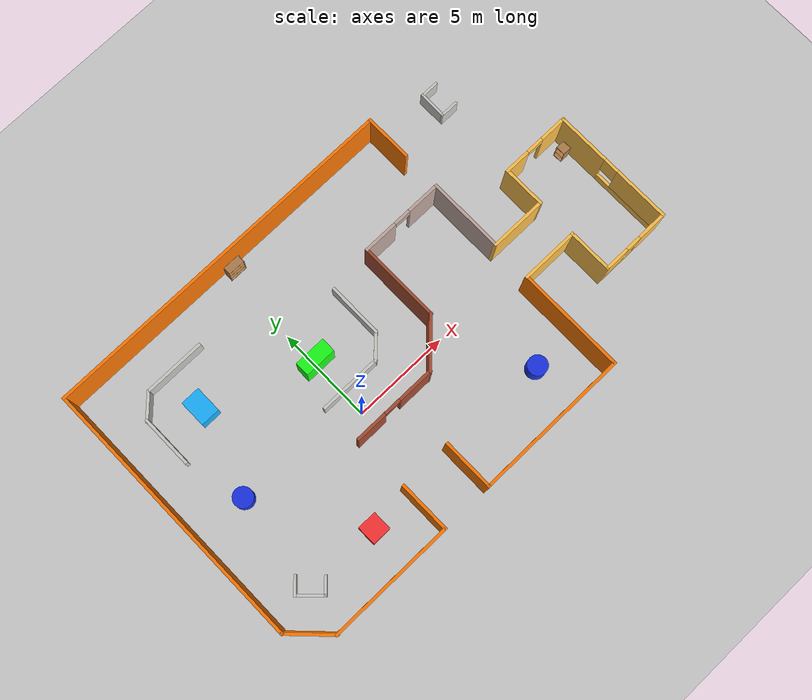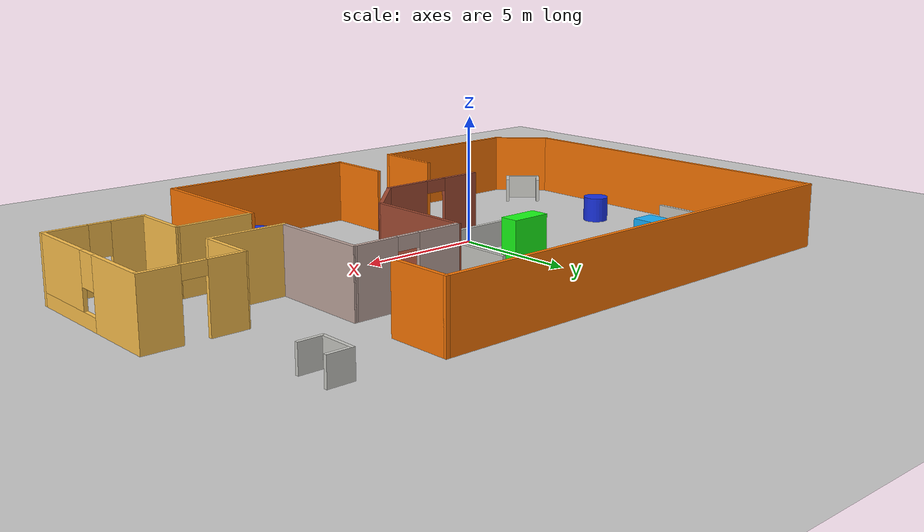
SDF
<sdf version="1.6">
 <world name="default">
  <light name="sun" type="directional">
   <pose>0 0 10 0 -0 0</pose>
   <diffuse>0.8 0.8 0.8 1</diffuse>
   <specular>0.2 0.2 0.2 1</specular>
   <attenuation>
    <range>1000</range>
    <constant>0.9</constant>
    <linear>0.01</linear>
    <quadratic>0.001</quadratic>
   </attenuation>
   <direction>-0.5 0.1 -0.9</direction>
  </light>
  <model name="ground_plane">
   <static>1</static>
   <link name="link">
    <collision name="collision">
     <geometry><plane><normal>0 0 1</normal><size>100 100</size></plane></geometry>
     <surface><friction><ode><mu>100</mu><mu2>50</mu2></ode></friction></surface>
    </collision>
    <visual name="visual">
     <cast_shadows>0</cast_shadows>
     <geometry><plane><normal>0 0 1</normal><size>100 100</size></plane></geometry>
     <material>
      <script><uri>file://media/materials/scripts/gazebo.material</uri><name>Gazebo/Grey</name></script>
     </material>
    </visual>
   </link>
  </model>
  <gravity>0 0 -9.8</gravity>
  <magnetic_field>6e-06 2.3e-05 -4.2e-05</magnetic_field>
  <atmosphere type="adiabatic"/>
  <physics name="default_physics" default="0" type="ode">
   <max_step_size>0.001</max_step_size>
   <real_time_factor>1</real_time_factor>
   <real_time_update_rate>1000</real_time_update_rate>
  </physics>
  <scene><ambient>0.4 0.4 0.4 1</ambient><background>0.7 0.7 0.7 1</background><shadows>1</shadows></scene>
  <spherical_coordinates>
   <surface_model>EARTH_WGS84</surface_model>
   <latitude_deg>0</latitude_deg>
   <longitude_deg>0</longitude_deg>
   <elevation>0</elevation>
   <heading_deg>0</heading_deg>
  </spherical_coordinates>
  <model name="bookshelf">
   <static>1</static>
   <link name="link">
    <inertial><mass>1</mass></inertial>
    <collision name="back">
     <pose>0 0.005 0.6 0 -0 0</pose>
     <geometry><box><size>0.9 0.01 1.2</size></box></geometry>
    </collision>
    <visual name="visual1">
     <pose>0 0.005 0.6 0 -0 0</pose>
     <geometry><box><size>0.9 0.01 1.2</size></box></geometry>
     <material>
      <script><uri>file://media/materials/scripts/gazebo.material</uri><name>Gazebo/Wood</name></script>
     </material>
    </visual>
    <collision name="left_side">
     <pose>0.45 -0.195 0.6 0 -0 0</pose>
     <geometry><box><size>0.02 0.4 1.2</size></box></geometry>
    </collision>
    <visual name="visual2">
     <pose>0.45 -0.195 0.6 0 -0 0</pose>
     <geometry><box><size>0.02 0.4 1.2</size></box></geometry>
     <material>
      <script><uri>file://media/materials/scripts/gazebo.material</uri><name>Gazebo/Wood</name></script>
     </material>
    </visual>
    <collision name="right_side">
     <pose>-0.45 -0.195 0.6 0 -0 0</pose>
     <geometry><box><size>0.02 0.4 1.2</size></box></geometry>
    </collision>
    <visual name="visual3">
     <pose>-0.45 -0.195 0.6 0 -0 0</pose>
     <geometry><box><size>0.02 0.4 1.2</size></box></geometry>
     <material>
      <script><uri>file://media/materials/scripts/gazebo.material</uri><name>Gazebo/Wood</name></script>
     </material>
    </visual>
    <collision name="bottom">
     <pose>0 -0.195 0.03 0 -0 0</pose>
     <geometry><box><size>0.88 0.4 0.06</size></box></geometry>
    </collision>
    <visual name="visual4">
     <pose>0 -0.195 0.03 0 -0 0</pose>
     <geometry><box><size>0.88 0.4 0.06</size></box></geometry>
     <material>
      <script><uri>file://media/materials/scripts/gazebo.material</uri><name>Gazebo/Wood</name></script>
     </material>
    </visual>
    <collision name="top">
     <pose>0 -0.195 1.19 0 -0 0</pose>
     <geometry><box><size>0.88 0.4 0.02</size></box></geometry>
    </collision>
    <visual name="visual5">
     <pose>0 -0.195 1.19 0 -0 0</pose>
     <geometry><box><size>0.88 0.4 0.02</size></box></geometry>
     <material>
      <script><uri>file://media/materials/scripts/gazebo.material</uri><name>Gazebo/Wood</name></script>
     </material>
    </visual>
    <collision name="low_shelf">
     <pose>0 -0.195 0.43 0 -0 0</pose>
     <geometry><box><size>0.88 0.4 0.02</size></box></geometry>
    </collision>
    <visual name="visual6">
     <pose>0 -0.195 0.43 0 -0 0</pose>
     <geometry><box><size>0.88 0.4 0.02</size></box></geometry>
     <material>
      <script><uri>file://media/materials/scripts/gazebo.material</uri><name>Gazebo/Wood</name></script>
     </material>
    </visual>
    <collision name="high_shelf">
     <pose>0 -0.195 0.8 0 -0 0</pose>
     <geometry><box><size>0.88 0.4 0.02</size></box></geometry>
    </collision>
    <visual name="visual7">
     <pose>0 -0.195 0.8 0 -0 0</pose>
     <geometry><box><size>0.88 0.4 0.02</size></box></geometry>
     <material>
      <script><uri>file://media/materials/scripts/gazebo.material</uri><name>Gazebo/Wood</name></script>
     </material>
    </visual>
   </link>
   <pose>0.41505 9.14949 0 0 -0 0</pose>
  </model>
  <model name="nav-test-3">
   <pose>3.31151 1.4539 0 0 -0 0</pose>
   <link name="Wall_0">
    <pose>-2.24521 -2.42459 0 0 -0 0</pose>
    <visual name="Wall_0_Visual_0">
     <pose>-1.41633 0 1.25 0 -0 0</pose>
     <geometry><box><size>1.68733 0.15 2.5</size></box></geometry>
     <material>
      <script><uri>file://media/materials/scripts/gazebo.material</uri><name>Gazebo/Bricks</name></script>
      <ambient>0.760784 0.662745 0.627451 1</ambient>
     </material>
     <meta><layer>0</layer></meta>
    </visual>
    <collision name="Wall_0_Collision_0">
     <geometry><box><size>1.68733 0.15 2.5</size></box></geometry>
     <pose>-1.41633 0 1.25 0 -0 0</pose>
    </collision>
    <visual name="Wall_0_Visual_1">
     <pose>1.29367 0 1.25 0 -0 0</pose>
     <geometry><box><size>1.93267 0.15 2.5</size></box></geometry>
     <material>
      <script><uri>file://media/materials/scripts/gazebo.material</uri><name>Gazebo/Bricks</name></script>
      <ambient>0.760784 0.662745 0.627451 1</ambient>
     </material>
     <meta><layer>0</layer></meta>
    </visual>
    <collision name="Wall_0_Collision_1">
     <geometry><box><size>1.93267 0.15 2.5</size></box></geometry>
     <pose>1.29367 0 1.25 0 -0 0</pose>
    </collision>
    <visual name="Wall_0_Visual_2">
     <pose>-0.122667 0 2.25 0 -0 0</pose>
     <geometry><box><size>0.9 0.15 0.5</size></box></geometry>
     <material>
      <script><uri>file://media/materials/scripts/gazebo.material</uri><name>Gazebo/Bricks</name></script>
      <ambient>0.760784 0.662745 0.627451 1</ambient>
     </material>
     <meta><layer>0</layer></meta>
    </visual>
    <collision name="Wall_0_Collision_2">
     <geometry><box><size>0.9 0.15 0.5</size></box></geometry>
     <pose>-0.122667 0 2.25 0 -0 0</pose>
    </collision>
   </link>
   <link name="Wall_1">
    <collision name="Wall_1_Collision">
     <geometry><box><size>2.75 0.15 2.5</size></box></geometry>
     <pose>0 0 1.25 0 -0 0</pose>
    </collision>
    <visual name="Wall_1_Visual">
     <pose>0 0 1.25 0 -0 0</pose>
     <geometry><box><size>2.75 0.15 2.5</size></box></geometry>
     <material>
      <script><uri>file://media/materials/scripts/gazebo.material</uri><name>Gazebo/Bricks</name></script>
      <ambient>0.760784 0.662745 0.627451 1</ambient>
     </material>
     <meta><layer>0</layer></meta>
    </visual>
    <pose>0.858791 -1.50559 0 0 -0 0.785398</pose>
   </link>
   <link name="Wall_10">
    <collision name="Wall_10_Collision">
     <geometry><box><size>2.715 0.15 2.5</size></box></geometry>
     <pose>0 0 1.25 0 -0 0</pose>
    </collision>
    <visual name="Wall_10_Visual">
     <pose>0 0 1.25 0 -0 0</pose>
     <geometry><box><size>2.715 0.15 2.5</size></box></geometry>
     <material>
      <script><uri>file://media/materials/scripts/gazebo.material</uri><name>Gazebo/Grey</name></script>
      <ambient>0.996078 0.47451 0.0196078 1</ambient>
     </material>
     <meta><layer>0</layer></meta>
    </visual>
    <pose>-4.43021 -6.54909 0 0 0 -1.5708</pose>
   </link>
   <link name="Wall_11">
    <collision name="Wall_11_Collision">
     <geometry><box><size>6.60515 0.15 2.5</size></box></geometry>
     <pose>0 0 1.25 0 -0 0</pose>
    </collision>
    <visual name="Wall_11_Visual">
     <pose>0 0 1.25 0 -0 0</pose>
     <geometry><box><size>6.60515 0.15 2.5</size></box></geometry>
     <material>
      <script><uri>file://media/materials/scripts/gazebo.material</uri><name>Gazebo/Grey</name></script>
      <ambient>0.996078 0.47451 0.0196078 1</ambient>
     </material>
     <meta><layer>0</layer></meta>
    </visual>
    <pose>-7.65771 -7.83159 0 0 -0 3.14159</pose>
   </link>
   <link name="Wall_12">
    <collision name="Wall_12_Collision">
     <geometry><box><size>2.50042 0.15 2.5</size></box></geometry>
     <pose>0 0 1.25 0 -0 0</pose>
    </collision>
    <visual name="Wall_12_Visual">
     <pose>0 0 1.25 0 -0 0</pose>
     <geometry><box><size>2.50042 0.15 2.5</size></box></geometry>
     <material>
      <script><uri>file://media/materials/scripts/gazebo.material</uri><name>Gazebo/Grey</name></script>
      <ambient>0.996078 0.47451 0.0196078 1</ambient>
     </material>
     <meta><layer>0</layer></meta>
    </visual>
    <pose>-11.7162 -7.00059 0 0 -0 2.35619</pose>
   </link>
   <link name="Wall_13">
    <collision name="Wall_13_Collision">
     <geometry><box><size>14.182 0.15 2.5</size></box></geometry>
     <pose>0 0 1.25 0 -0 0</pose>
    </collision>
    <visual name="Wall_13_Visual">
     <pose>0 0 1.25 0 -0 0</pose>
     <geometry><box><size>14.182 0.15 2.5</size></box></geometry>
     <material>
      <script><uri>file://media/materials/scripts/gazebo.material</uri><name>Gazebo/Grey</name></script>
      <ambient>0.996078 0.47451 0.0196078 1</ambient>
     </material>
     <meta><layer>0</layer></meta>
    </visual>
    <pose>-12.5472 0.846409 0 0 -0 1.5708</pose>
   </link>
   <link name="Wall_15">
    <collision name="Wall_15_Collision">
     <geometry><box><size>2.715 0.15 2.5</size></box></geometry>
     <pose>0 0 1.25 0 -0 0</pose>
    </collision>
    <visual name="Wall_15_Visual">
     <pose>0 0 1.25 0 -0 0</pose>
     <geometry><box><size>2.715 0.15 2.5</size></box></geometry>
     <material>
      <script><uri>file://media/materials/scripts/gazebo.material</uri><name>Gazebo/Grey</name></script>
      <ambient>0.996078 0.47451 0.0196078 1</ambient>
     </material>
     <meta><layer>0</layer></meta>
    </visual>
    <pose>-1.77221 -6.54909 0 0 0 -1.5708</pose>
   </link>
   <link name="Wall_16">
    <collision name="Wall_16_Collision">
     <geometry><box><size>8 0.15 2.5</size></box></geometry>
     <pose>0 0 1.25 0 -0 0</pose>
    </collision>
    <visual name="Wall_16_Visual">
     <pose>0 0 1.25 0 -0 0</pose>
     <geometry><box><size>8 0.15 2.5</size></box></geometry>
     <material>
      <script><uri>file://media/materials/scripts/gazebo.material</uri><name>Gazebo/Grey</name></script>
      <ambient>0.996078 0.47451 0.0196078 1</ambient>
     </material>
     <meta><layer>0</layer></meta>
    </visual>
    <pose>2.15279 -7.83159 0 0 -0 0</pose>
   </link>
   <link name="Wall_17">
    <collision name="Wall_17_Collision">
     <geometry><box><size>5.60694 0.15 2.5</size></box></geometry>
     <pose>0 0 1.25 0 -0 0</pose>
    </collision>
    <visual name="Wall_17_Visual">
     <pose>0 0 1.25 0 -0 0</pose>
     <geometry><box><size>5.60694 0.15 2.5</size></box></geometry>
     <material>
      <script><uri>file://media/materials/scripts/gazebo.material</uri><name>Gazebo/Grey</name></script>
      <ambient>0.996078 0.47451 0.0196078 1</ambient>
     </material>
     <meta><layer>0</layer></meta>
    </visual>
    <pose>6.07782 -5.10312 0 0 -0 1.57079</pose>
   </link>
   <link name="Wall_18">
    <collision name="Wall_18_Collision">
     <geometry><box><size>3.04994 0.15 2.5</size></box></geometry>
     <pose>0 0 1.25 0 -0 0</pose>
    </collision>
    <visual name="Wall_18_Visual">
     <pose>0 0 1.25 0 -0 0</pose>
     <geometry><box><size>3.04994 0.15 2.5</size></box></geometry>
     <material>
      <script><uri>file://media/materials/scripts/gazebo.material</uri><name>Gazebo/Grey</name></script>
      <ambient>1 0.764706 0.305882 1</ambient>
     </material>
     <meta><layer>0</layer></meta>
    </visual>
    <pose>7.52782 -2.37462 0 0 -0 2.1e-05</pose>
   </link>
   <link name="Wall_2">
    <collision name="Wall_2_Collision">
     <geometry><box><size>4.25 0.15 2.5</size></box></geometry>
     <pose>0 0 1.25 0 -0 0</pose>
    </collision>
    <visual name="Wall_2_Visual">
     <pose>0 0 1.25 0 -0 0</pose>
     <geometry><box><size>4.25 0.15 2.5</size></box></geometry>
     <material>
      <script><uri>file://media/materials/scripts/gazebo.material</uri><name>Gazebo/Bricks</name></script>
      <ambient>0.760784 0.662745 0.627451 1</ambient>
     </material>
     <meta><layer>0</layer></meta>
    </visual>
    <pose>1.77779 1.46341 0 0 -0 1.5708</pose>
   </link>
   <link name="Wall_20">
    <collision name="Wall_20_Collision">
     <geometry><box><size>3 0.15 2.5</size></box></geometry>
     <pose>0 0 1.25 0 -0 0</pose>
    </collision>
    <visual name="Wall_20_Visual">
     <pose>0 0 1.25 0 -0 0</pose>
     <geometry><box><size>3 0.15 2.5</size></box></geometry>
     <material>
      <script><uri>file://media/materials/scripts/gazebo.material</uri><name>Gazebo/Grey</name></script>
      <ambient>1 0.764706 0.305882 1</ambient>
     </material>
     <meta><layer>0</layer></meta>
    </visual>
    <pose>7.55303 -0.336352 0 0 0 -0.000168</pose>
   </link>
   <link name="Wall_22">
    <collision name="Wall_22_Collision">
     <geometry><box><size>2.25 0.15 2.5</size></box></geometry>
     <pose>0 0 1.25 0 -0 0</pose>
    </collision>
    <visual name="Wall_22_Visual">
     <pose>0 0 1.25 0 -0 0</pose>
     <geometry><box><size>2.25 0.15 2.5</size></box></geometry>
     <material>
      <script><uri>file://media/materials/scripts/gazebo.material</uri><name>Gazebo/Grey</name></script>
      <ambient>1 0.764706 0.305882 1</ambient>
     </material>
     <meta><layer>0</layer></meta>
    </visual>
    <pose>8.97779 0.713409 0 0 -0 1.5708</pose>
   </link>
   <link name="Wall_23">
    <pose>10.778 1.76365 0 0 -0 0.000133</pose>
    <visual name="Wall_23_Visual_0">
     <pose>-1.18007 0 1.25 0 -0 0</pose>
     <geometry><box><size>1.38986 0.15 2.5</size></box></geometry>
     <material>
      <script><uri>file://media/materials/scripts/gazebo.material</uri><name>Gazebo/Grey</name></script>
      <ambient>1 0.764706 0.305882 1</ambient>
     </material>
     <meta><layer>0</layer></meta>
    </visual>
    <collision name="Wall_23_Collision_0">
     <geometry><box><size>1.38986 0.15 2.5</size></box></geometry>
     <pose>-1.18007 0 1.25 0 -0 0</pose>
    </collision>
    <visual name="Wall_23_Visual_1">
     <pose>1.14493 0 1.25 0 -0 0</pose>
     <geometry><box><size>1.46014 0.15 2.5</size></box></geometry>
     <material>
      <script><uri>file://media/materials/scripts/gazebo.material</uri><name>Gazebo/Grey</name></script>
      <ambient>1 0.764706 0.305882 1</ambient>
     </material>
     <meta><layer>0</layer></meta>
    </visual>
    <collision name="Wall_23_Collision_1">
     <geometry><box><size>1.46014 0.15 2.5</size></box></geometry>
     <pose>1.14493 0 1.25 0 -0 0</pose>
    </collision>
    <visual name="Wall_23_Visual_2">
     <pose>-0.035141 0 2.25 0 -0 0</pose>
     <geometry><box><size>0.9 0.15 0.5</size></box></geometry>
     <material>
      <script><uri>file://media/materials/scripts/gazebo.material</uri><name>Gazebo/Grey</name></script>
      <ambient>1 0.764706 0.305882 1</ambient>
     </material>
     <meta><layer>0</layer></meta>
    </visual>
    <collision name="Wall_23_Collision_2">
     <geometry><box><size>0.9 0.15 0.5</size></box></geometry>
     <pose>-0.035141 0 2.25 0 -0 0</pose>
    </collision>
   </link>
   <link name="Wall_24">
    <pose>12.578 -1.41135 0 0 0 -1.57087</pose>
    <visual name="Wall_24_Visual_0">
     <pose>-1.86182 0 1.25 0 -0 0</pose>
     <geometry><box><size>2.77637 0.15 2.5</size></box></geometry>
     <material>
      <script><uri>file://media/materials/scripts/gazebo.material</uri><name>Gazebo/Grey</name></script>
      <ambient>1 0.764706 0.305882 1</ambient>
     </material>
     <meta><layer>0</layer></meta>
    </visual>
    <collision name="Wall_24_Collision_0">
     <geometry><box><size>2.77637 0.15 2.5</size></box></geometry>
     <pose>-1.86182 0 1.25 0 -0 0</pose>
    </collision>
    <visual name="Wall_24_Visual_1">
     <pose>1.38818 0 0.25 0 -0 0</pose>
     <geometry><box><size>3.72363 0.15 0.5</size></box></geometry>
     <material>
      <script><uri>file://media/materials/scripts/gazebo.material</uri><name>Gazebo/Grey</name></script>
      <ambient>1 0.764706 0.305882 1</ambient>
     </material>
     <meta><layer>0</layer></meta>
    </visual>
    <collision name="Wall_24_Collision_1">
     <geometry><box><size>3.72363 0.15 0.5</size></box></geometry>
     <pose>1.38818 0 0.25 0 -0 0</pose>
    </collision>
    <visual name="Wall_24_Visual_2">
     <pose>1.78818 0 1.5 0 -0 0</pose>
     <geometry><box><size>2.92363 0.15 2</size></box></geometry>
     <material>
      <script><uri>file://media/materials/scripts/gazebo.material</uri><name>Gazebo/Grey</name></script>
      <ambient>1 0.764706 0.305882 1</ambient>
     </material>
     <meta><layer>0</layer></meta>
    </visual>
    <collision name="Wall_24_Collision_2">
     <geometry><box><size>2.92363 0.15 2</size></box></geometry>
     <pose>1.78818 0 1.5 0 -0 0</pose>
    </collision>
    <visual name="Wall_24_Visual_3">
     <pose>-0.073632 0 1.9 0 -0 0</pose>
     <geometry><box><size>0.8 0.15 1.2</size></box></geometry>
     <material>
      <script><uri>file://media/materials/scripts/gazebo.material</uri><name>Gazebo/Grey</name></script>
      <ambient>1 0.764706 0.305882 1</ambient>
     </material>
     <meta><layer>0</layer></meta>
    </visual>
    <collision name="Wall_24_Collision_3">
     <geometry><box><size>0.8 0.15 1.2</size></box></geometry>
     <pose>-0.073632 0 1.9 0 -0 0</pose>
    </collision>
   </link>
   <link name="Wall_25">
    <pose>10.7778 -4.58659 0 0 -0 3.14159</pose>
    <visual name="Wall_25_Visual_0">
     <pose>-1.06993 0 1.25 0 -0 0</pose>
     <geometry><box><size>1.61014 0.15 2.5</size></box></geometry>
     <material>
      <script><uri>file://media/materials/scripts/gazebo.material</uri><name>Gazebo/Grey</name></script>
      <ambient>1 0.764706 0.305882 1</ambient>
     </material>
     <meta><layer>0</layer></meta>
    </visual>
    <collision name="Wall_25_Collision_0">
     <geometry><box><size>1.61014 0.15 2.5</size></box></geometry>
     <pose>-1.06993 0 1.25 0 -0 0</pose>
    </collision>
    <visual name="Wall_25_Visual_1">
     <pose>0.805069 0 0.25 0 -0 0</pose>
     <geometry><box><size>2.13986 0.15 0.5</size></box></geometry>
     <material>
      <script><uri>file://media/materials/scripts/gazebo.material</uri><name>Gazebo/Grey</name></script>
      <ambient>1 0.764706 0.305882 1</ambient>
     </material>
     <meta><layer>0</layer></meta>
    </visual>
    <collision name="Wall_25_Collision_1">
     <geometry><box><size>2.13986 0.15 0.5</size></box></geometry>
     <pose>0.805069 0 0.25 0 -0 0</pose>
    </collision>
    <visual name="Wall_25_Visual_2">
     <pose>1.20507 0 1.5 0 -0 0</pose>
     <geometry><box><size>1.33986 0.15 2</size></box></geometry>
     <material>
      <script><uri>file://media/materials/scripts/gazebo.material</uri><name>Gazebo/Grey</name></script>
      <ambient>1 0.764706 0.305882 1</ambient>
     </material>
     <meta><layer>0</layer></meta>
    </visual>
    <collision name="Wall_25_Collision_2">
     <geometry><box><size>1.33986 0.15 2</size></box></geometry>
     <pose>1.20507 0 1.5 0 -0 0</pose>
    </collision>
    <visual name="Wall_25_Visual_3">
     <pose>0.135138 0 1.9 0 -0 0</pose>
     <geometry><box><size>0.8 0.15 1.2</size></box></geometry>
     <material>
      <script><uri>file://media/materials/scripts/gazebo.material</uri><name>Gazebo/Grey</name></script>
      <ambient>1 0.764706 0.305882 1</ambient>
     </material>
     <meta><layer>0</layer></meta>
    </visual>
    <collision name="Wall_25_Collision_3">
     <geometry><box><size>0.8 0.15 1.2</size></box></geometry>
     <pose>0.135138 0 1.9 0 -0 0</pose>
    </collision>
   </link>
   <link name="Wall_27">
    <collision name="Wall_27_Collision">
     <geometry><box><size>2.362 0.15 2.5</size></box></geometry>
     <pose>0 0 1.25 0 -0 0</pose>
    </collision>
    <visual name="Wall_27_Visual">
     <pose>0 0 1.25 0 -0 0</pose>
     <geometry><box><size>2.362 0.15 2.5</size></box></geometry>
     <material>
      <script><uri>file://media/materials/scripts/gazebo.material</uri><name>Gazebo/Grey</name></script>
      <ambient>1 0.764706 0.305882 1</ambient>
     </material>
     <meta><layer>0</layer></meta>
    </visual>
    <pose>8.97779 -3.48059 0 0 0 -1.5708</pose>
   </link>
   <link name="Wall_29">
    <collision name="Wall_29_Collision">
     <geometry><box><size>2.5 0.15 2.5</size></box></geometry>
     <pose>0 0 1.25 0 -0 0</pose>
    </collision>
    <visual name="Wall_29_Visual">
     <pose>0 0 1.25 0 -0 0</pose>
     <geometry><box><size>2.5 0.15 2.5</size></box></geometry>
     <material>
      <script><uri>file://media/materials/scripts/gazebo.material</uri><name>Gazebo/Grey</name></script>
      <ambient>0.996078 0.47451 0.0196078 1</ambient>
     </material>
     <meta><layer>0</layer></meta>
    </visual>
    <pose>6.14893 6.68765 0 0 -0 1.57092</pose>
   </link>
   <link name="Wall_3">
    <pose>3.95303 3.51365 0 0 -0 0.00011</pose>
    <visual name="Wall_3_Visual_0">
     <pose>-1.34498 0 1.25 0 -0 0</pose>
     <geometry><box><size>1.81003 0.15 2.5</size></box></geometry>
     <material>
      <script><uri>file://media/materials/scripts/gazebo.material</uri><name>Gazebo/Grey</name></script>
      <ambient>0.760784 0.662745 0.627451 1</ambient>
     </material>
     <meta><layer>0</layer></meta>
    </visual>
    <collision name="Wall_3_Collision_0">
     <geometry><box><size>1.81003 0.15 2.5</size></box></geometry>
     <pose>-1.34498 0 1.25 0 -0 0</pose>
    </collision>
    <visual name="Wall_3_Visual_1">
     <pose>1.35502 0 1.25 0 -0 0</pose>
     <geometry><box><size>1.78997 0.15 2.5</size></box></geometry>
     <material>
      <script><uri>file://media/materials/scripts/gazebo.material</uri><name>Gazebo/Grey</name></script>
      <ambient>0.760784 0.662745 0.627451 1</ambient>
     </material>
     <meta><layer>0</layer></meta>
    </visual>
    <collision name="Wall_3_Collision_1">
     <geometry><box><size>1.78997 0.15 2.5</size></box></geometry>
     <pose>1.35502 0 1.25 0 -0 0</pose>
    </collision>
    <visual name="Wall_3_Visual_2">
     <pose>0.010032 0 2.25 0 -0 0</pose>
     <geometry><box><size>0.9 0.15 0.5</size></box></geometry>
     <material>
      <script><uri>file://media/materials/scripts/gazebo.material</uri><name>Gazebo/Grey</name></script>
      <ambient>0.760784 0.662745 0.627451 1</ambient>
     </material>
     <meta><layer>0</layer></meta>
    </visual>
    <collision name="Wall_3_Collision_2">
     <geometry><box><size>0.9 0.15 0.5</size></box></geometry>
     <pose>0.010032 0 2.25 0 -0 0</pose>
    </collision>
   </link>
   <link name="Wall_30">
    <collision name="Wall_30_Collision">
     <geometry><box><size>18.846 0.15 2.5</size></box></geometry>
     <pose>0 0 1.25 0 -0 0</pose>
    </collision>
    <visual name="Wall_30_Visual">
     <pose>0 0 1.25 0 -0 0</pose>
     <geometry><box><size>18.846 0.15 2.5</size></box></geometry>
     <material>
      <script><uri>file://media/materials/scripts/gazebo.material</uri><name>Gazebo/Grey</name></script>
      <ambient>0.996078 0.47451 0.0196078 1</ambient>
     </material>
     <meta><layer>0</layer></meta>
    </visual>
    <pose>-3.19921 7.86241 0 0 -0 3.14159</pose>
   </link>
   <link name="Wall_32">
    <collision name="Wall_32_Collision">
     <geometry><box><size>3.25 0.15 1</size></box></geometry>
     <pose>0 0 0.5 0 -0 0</pose>
    </collision>
    <visual name="Wall_32_Visual">
     <pose>0 0 0.5 0 -0 0</pose>
     <geometry><box><size>3.25 0.15 1</size></box></geometry>
     <material>
      <script><uri>file://media/materials/scripts/gazebo.material</uri><name>Gazebo/CeilingTiled</name></script>
      <ambient>0.435294 0.796078 0.67451 1</ambient>
     </material>
     <meta><layer>0</layer></meta>
    </visual>
    <pose>-8.11721 5.88541 0 0 -0 3.14159</pose>
   </link>
   <link name="Wall_36">
    <collision name="Wall_36_Collision">
     <geometry><box><size>1.5 0.15 1</size></box></geometry>
     <pose>0 0 0.5 0 -0 0</pose>
    </collision>
    <visual name="Wall_36_Visual">
     <pose>0 0 0.5 0 -0 0</pose>
     <geometry><box><size>1.5 0.15 1</size></box></geometry>
     <material>
      <script><uri>file://media/materials/scripts/gazebo.material</uri><name>Gazebo/CeilingTiled</name></script>
      <ambient>0.435294 0.796078 0.67451 1</ambient>
     </material>
     <meta><layer>0</layer></meta>
    </visual>
    <pose>-10.1447 5.40791 0 0 0 -2.35619</pose>
   </link>
   <link name="Wall_37">
    <collision name="Wall_37_Collision">
     <geometry><box><size>2.75 0.15 1</size></box></geometry>
     <pose>0 0 0.5 0 -0 0</pose>
    </collision>
    <visual name="Wall_37_Visual">
     <pose>0 0 0.5 0 -0 0</pose>
     <geometry><box><size>2.75 0.15 1</size></box></geometry>
     <material>
      <script><uri>file://media/materials/scripts/gazebo.material</uri><name>Gazebo/CeilingTiled</name></script>
      <ambient>0.435294 0.796078 0.67451 1</ambient>
     </material>
     <meta><layer>0</layer></meta>
    </visual>
    <pose>-10.6222 3.63041 0 0 0 -1.5708</pose>
   </link>
   <link name="Wall_4">
    <collision name="Wall_4_Collision">
     <geometry><box><size>4 0.15 2.5</size></box></geometry>
     <pose>0 0 1.25 0 -0 0</pose>
    </collision>
    <visual name="Wall_4_Visual">
     <pose>0 0 1.25 0 -0 0</pose>
     <geometry><box><size>4 0.15 2.5</size></box></geometry>
     <material>
      <script><uri>file://media/materials/scripts/gazebo.material</uri><name>Gazebo/Grey</name></script>
      <ambient>0.760784 0.662745 0.627451 1</ambient>
     </material>
     <meta><layer>0</layer></meta>
    </visual>
    <pose>6.12827 1.58889 0 0 0 -1.5708</pose>
   </link>
   <link name="Wall_6">
    <collision name="Wall_6_Collision">
     <geometry><box><size>2.909 0.15 1</size></box></geometry>
     <pose>0 0 0.5 0 -0 0</pose>
    </collision>
    <visual name="Wall_6_Visual">
     <pose>0 0 0.5 0 -0 0</pose>
     <geometry><box><size>2.909 0.15 1</size></box></geometry>
     <material>
      <script><uri>file://media/materials/scripts/gazebo.material</uri><name>Gazebo/CeilingTiled</name></script>
      <ambient>0.435294 0.796078 0.67451 1</ambient>
     </material>
     <meta><layer>0</layer></meta>
    </visual>
    <pose>-0.322209 2.13391 0 0 0 -1.5708</pose>
   </link>
   <link name="Wall_7">
    <collision name="Wall_7_Collision">
     <geometry><box><size>1.5 0.15 1</size></box></geometry>
     <pose>0 0 0.5 0 -0 0</pose>
    </collision>
    <visual name="Wall_7_Visual">
     <pose>0 0 0.5 0 -0 0</pose>
     <geometry><box><size>1.5 0.15 1</size></box></geometry>
     <material>
      <script><uri>file://media/materials/scripts/gazebo.material</uri><name>Gazebo/CeilingTiled</name></script>
      <ambient>0.435294 0.796078 0.67451 1</ambient>
     </material>
     <meta><layer>0</layer></meta>
    </visual>
    <pose>-0.799209 0.276909 0 0 0 -2.35567</pose>
   </link>
   <link name="Wall_8">
    <collision name="Wall_8_Collision">
     <geometry><box><size>3.304 0.15 1</size></box></geometry>
     <pose>0 0 0.5 0 -0 0</pose>
    </collision>
    <visual name="Wall_8_Visual">
     <pose>0 0 0.5 0 -0 0</pose>
     <geometry><box><size>3.304 0.15 1</size></box></geometry>
     <material>
      <script><uri>file://media/materials/scripts/gazebo.material</uri><name>Gazebo/CeilingTiled</name></script>
      <ambient>0.435294 0.796078 0.67451 1</ambient>
     </material>
     <meta><layer>0</layer></meta>
    </visual>
    <pose>-2.85321 -0.200591 0 0 -0 3.14159</pose>
   </link>
   <static>1</static>
  </model>
  <model name="cabinet">
   <static>1</static>
   <link name="cabinet_bottom_plate">
    <inertial>
     <pose>0 0 -1 0 -0 0</pose>
     <inertia><ixx>2.05</ixx><ixy>0</ixy><ixz>0</ixz><iyy>2.05</iyy><iyz>0</iyz><izz>2.05</izz></inertia>
     <mass>25</mass>
    </inertial>
    <collision name="cabinet_bottom_plate_geom">
     <pose>0 0 0.01 0 -0 0</pose>
     <geometry><box><size>0.45 0.45 0.02</size></box></geometry>
    </collision>
    <visual name="cabinet_bottom_plate_geom_visual">
     <pose>0 0 0.01 0 -0 0</pose>
     <geometry><box><size>0.45 0.45 0.02</size></box></geometry>
     <material>
      <script><uri>file://media/materials/scripts/gazebo.material</uri><name>Gazebo/Wood</name></script>
     </material>
    </visual>
    <collision name="cabinet_bottom_plate_geom_cabinet_back_plate">
     <pose>0.235 0 0.51 0 -0 0</pose>
     <geometry><box><size>0.02 0.45 1.02</size></box></geometry>
    </collision>
    <visual name="cabinet_bottom_plate_geom_cabinet_back_plate_visual">
     <pose>0.235 0 0.51 0 -0 0</pose>
     <geometry><box><size>0.02 0.45 1.02</size></box></geometry>
     <material>
      <script><uri>file://media/materials/scripts/gazebo.material</uri><name>Gazebo/Wood</name></script>
     </material>
    </visual>
    <collision name="cabinet_bottom_plate_geom_cabinet_left_plate">
     <pose>0 0.235 0.51 0 -0 0</pose>
     <geometry><box><size>0.45 0.02 1.02</size></box></geometry>
    </collision>
    <visual name="cabinet_bottom_plate_geom_cabinet_left_plate_visual">
     <pose>0 0.235 0.51 0 -0 0</pose>
     <geometry><box><size>0.45 0.02 1.02</size></box></geometry>
     <material>
      <script><uri>file://media/materials/scripts/gazebo.material</uri><name>Gazebo/Wood</name></script>
     </material>
    </visual>
    <collision name="cabinet_bottom_plate_geom_cabinet_middle_plate">
     <pose>0 0 0.51 0 -0 0</pose>
     <geometry><box><size>0.45 0.45 0.02</size></box></geometry>
    </collision>
    <visual name="cabinet_bottom_plate_geom_cabinet_middle_plate_visual">
     <pose>0 0 0.51 0 -0 0</pose>
     <geometry><box><size>0.45 0.45 0.02</size></box></geometry>
     <material>
      <script><uri>file://media/materials/scripts/gazebo.material</uri><name>Gazebo/Wood</name></script>
     </material>
    </visual>
    <collision name="cabinet_bottom_plate_geom_cabinet_right_plate">
     <pose>0 -0.235 0.51 0 -0 0</pose>
     <geometry><box><size>0.45 0.02 1.02</size></box></geometry>
    </collision>
    <visual name="cabinet_bottom_plate_geom_cabinet_right_plate_visual">
     <pose>0 -0.235 0.51 0 -0 0</pose>
     <geometry><box><size>0.45 0.02 1.02</size></box></geometry>
     <material>
      <script><uri>file://media/materials/scripts/gazebo.material</uri><name>Gazebo/Wood</name></script>
     </material>
    </visual>
    <collision name="cabinet_bottom_plate_geom_cabinet_top_plate">
     <pose>0 0 1.01 0 -0 0</pose>
     <geometry><box><size>0.45 0.45 0.02</size></box></geometry>
    </collision>
    <visual name="cabinet_bottom_plate_geom_cabinet_top_plate_visual">
     <pose>0 0 1.01 0 -0 0</pose>
     <geometry><box><size>0.45 0.45 0.02</size></box></geometry>
     <material>
      <script><uri>file://media/materials/scripts/gazebo.material</uri><name>Gazebo/Wood</name></script>
     </material>
    </visual>
   </link>
   <pose>15.4759 2.45487 0 0 -0 0</pose>
  </model>
  <model name="unit_box_blue">
   <link name="link">
    <inertial>
     <mass>1.37757</mass>
     <inertia>
      <ixx>0.332649</ixx>
      <ixy>0</ixy>
      <ixz>0</ixz>
      <iyy>0.229595</iyy>
      <iyz>0</iyz>
      <izz>0.332649</izz>
     </inertia>
    </inertial>
    <visual name="visual">
     <geometry><box><size>1 1.37757 1</size></box></geometry>
     <material>
      <script><name>Gazebo/Grey</name><uri>file://media/materials/scripts/gazebo.material</uri></script>
      <shader type="pixel"><normal_map>__default__</normal_map></shader>
      <ambient>0.1 0.3 1 1</ambient>
      <diffuse>0.1 0.7 1 1</diffuse>
      <specular>0.01 0.01 1 1</specular>
      <emissive>0 0 0 1</emissive>
     </material>
    </visual>
    <collision name="collision">
     <geometry><box><size>1 1.37757 1</size></box></geometry>
     <surface>
      <friction>
       <ode><mu>1</mu><mu2>1</mu2><fdir1>0 0 0</fdir1><slip1>0</slip1><slip2>0</slip2></ode>
       <torsional>
        <coefficient>1</coefficient>
        <patch_radius>0</patch_radius>
        <surface_radius>0</surface_radius>
        <use_patch_radius>1</use_patch_radius>
        <ode><slip>0</slip></ode>
       </torsional>
      </friction>
      <bounce><restitution_coefficient>0</restitution_coefficient><threshold>1e+06</threshold></bounce>
      <contact>
       <collide_without_contact>0</collide_without_contact>
       <collide_without_contact_bitmask>1</collide_without_contact_bitmask>
       <collide_bitmask>1</collide_bitmask>
       <ode>
        <soft_cfm>0</soft_cfm>
        <soft_erp>0.2</soft_erp>
        <kp>1e+13</kp>
        <kd>1</kd>
        <max_vel>0.01</max_vel>
        <min_depth>0</min_depth>
       </ode>
       <bullet>
        <split_impulse>1</split_impulse>
        <split_impulse_penetration_threshold>-0.01</split_impulse_penetration_threshold>
        <soft_cfm>0</soft_cfm>
        <soft_erp>0.2</soft_erp>
        <kp>1e+13</kp>
        <kd>1</kd>
       </bullet>
      </contact>
     </surface>
    </collision>
   </link>
   <static>0</static>
   <pose>-5.14394 5.19574 0.5 0 0 -7e-06</pose>
  </model>
  <model name="unit_box_red">
   <link name="link">
    <inertial>
     <mass>1</mass>
     <inertia>
      <ixx>0.166667</ixx>
      <ixy>0</ixy>
      <ixz>0</ixz>
      <iyy>0.166667</iyy>
      <iyz>0</iyz>
      <izz>0.166667</izz>
     </inertia>
    </inertial>
    <visual name="visual">
     <geometry><box><size>1 1 1</size></box></geometry>
     <material>
      <script><name>Gazebo/Grey</name><uri>file://media/materials/scripts/gazebo.material</uri></script>
      <shader type="pixel"><normal_map>__default__</normal_map></shader>
      <ambient>1 0.2 0.1 1</ambient>
      <diffuse>1 0.2 0.2 1</diffuse>
      <specular>1 0.01 0.01 1</specular>
      <emissive>0 0 0 1</emissive>
     </material>
    </visual>
    <collision name="collision">
     <geometry><box><size>1 1 1</size></box></geometry>
     <surface>
      <friction>
       <ode><mu>1</mu><mu2>1</mu2><fdir1>0 0 0</fdir1><slip1>0</slip1><slip2>0</slip2></ode>
       <torsional>
        <coefficient>1</coefficient>
        <patch_radius>0</patch_radius>
        <surface_radius>0</surface_radius>
        <use_patch_radius>1</use_patch_radius>
        <ode><slip>0</slip></ode>
       </torsional>
      </friction>
      <bounce><restitution_coefficient>0</restitution_coefficient><threshold>1e+06</threshold></bounce>
      <contact>
       <collide_without_contact>0</collide_without_contact>
       <collide_without_contact_bitmask>1</collide_without_contact_bitmask>
       <collide_bitmask>1</collide_bitmask>
       <ode>
        <soft_cfm>0</soft_cfm>
        <soft_erp>0.2</soft_erp>
        <kp>1e+13</kp>
        <kd>1</kd>
        <max_vel>0.01</max_vel>
        <min_depth>0</min_depth>
       </ode>
       <bullet>
        <split_impulse>1</split_impulse>
        <split_impulse_penetration_threshold>-0.01</split_impulse_penetration_threshold>
        <soft_cfm>0</soft_cfm>
        <soft_erp>0.2</soft_erp>
        <kp>1e+13</kp>
        <kd>1</kd>
       </bullet>
      </contact>
     </surface>
    </collision>
   </link>
   <static>0</static>
   <pose>-3.24685 -4.17622 0.499995 0 1e-05 0</pose>
  </model>
  <model name="unit_box_green">
   <link name="link">
    <inertial>
     <mass>1</mass>
     <inertia>
      <ixx>0.166667</ixx>
      <ixy>0</ixy>
      <ixz>0</ixz>
      <iyy>0.166667</iyy>
      <iyz>0</iyz>
      <izz>0.166667</izz>
     </inertia>
    </inertial>
    <visual name="visual">
     <geometry><box><size>1.64387 0.747802 1.64366</size></box></geometry>
     <material>
      <script><name>Gazebo/Grey</name><uri>file://media/materials/scripts/gazebo.material</uri></script>
      <shader type="pixel"><normal_map>__default__</normal_map></shader>
      <ambient>0.1 1 0.1 1</ambient>
      <diffuse>0.1 1 0.1 1</diffuse>
      <specular>0.01 1 0.01 1</specular>
      <emissive>0 0 0 1</emissive>
     </material>
    </visual>
    <collision name="collision">
     <geometry><box><size>1.64387 0.747802 1.64366</size></box></geometry>
     <surface>
      <friction>
       <ode><mu>1</mu><mu2>1</mu2><fdir1>0 0 0</fdir1><slip1>0</slip1><slip2>0</slip2></ode>
       <torsional>
        <coefficient>1</coefficient>
        <patch_radius>0</patch_radius>
        <surface_radius>0</surface_radius>
        <use_patch_radius>1</use_patch_radius>
        <ode><slip>0</slip></ode>
       </torsional>
      </friction>
      <bounce><restitution_coefficient>0</restitution_coefficient><threshold>1e+06</threshold></bounce>
      <contact>
       <collide_without_contact>0</collide_without_contact>
       <collide_without_contact_bitmask>1</collide_without_contact_bitmask>
       <collide_bitmask>1</collide_bitmask>
       <ode>
        <soft_cfm>0</soft_cfm>
        <soft_erp>0.2</soft_erp>
        <kp>1e+13</kp>
        <kd>1</kd>
        <max_vel>0.01</max_vel>
        <min_depth>0</min_depth>
       </ode>
       <bullet>
        <split_impulse>1</split_impulse>
        <split_impulse_penetration_threshold>-0.01</split_impulse_penetration_threshold>
        <soft_cfm>0</soft_cfm>
        <soft_erp>0.2</soft_erp>
        <kp>1e+13</kp>
        <kd>1</kd>
       </bullet>
      </contact>
     </surface>
    </collision>
   </link>
   <static>0</static>
   <pose>0.10091 3.15381 0.82183 0 -0 2e-06</pose>
  </model>
  <model name="unit_cylinder_blue">
   <link name="link">
    <inertial>
     <mass>1</mass>
     <inertia><ixx>0.145833</ixx><ixy>0</ixy><ixz>0</ixz><iyy>0.145833</iyy><iyz>0</iyz><izz>0.125</izz></inertia>
    </inertial>
    <visual name="visual">
     <geometry><cylinder><radius>0.5</radius><length>1</length></cylinder></geometry>
     <material>
      <script><name>Gazebo/Grey</name><uri>file://media/materials/scripts/gazebo.material</uri></script>
      <shader type="pixel"><normal_map>__default__</normal_map></shader>
      <ambient>0.1 0.2 0.9 1</ambient>
      <diffuse>0.1 0.2 0.9 1</diffuse>
      <specular>0.01 0.01 0.9 1</specular>
      <emissive>0 0 0 1</emissive>
     </material>
    </visual>
    <collision name="collision">
     <geometry><cylinder><radius>0.5</radius><length>1</length></cylinder></geometry>
     <surface>
      <friction>
       <ode><mu>1</mu><mu2>1</mu2><fdir1>0 0 0</fdir1><slip1>0</slip1><slip2>0</slip2></ode>
       <torsional>
        <coefficient>1</coefficient>
        <patch_radius>0</patch_radius>
        <surface_radius>0</surface_radius>
        <use_patch_radius>1</use_patch_radius>
        <ode><slip>0</slip></ode>
       </torsional>
      </friction>
      <bounce><restitution_coefficient>0</restitution_coefficient><threshold>1e+06</threshold></bounce>
      <contact>
       <collide_without_contact>0</collide_without_contact>
       <collide_without_contact_bitmask>1</collide_without_contact_bitmask>
       <collide_bitmask>1</collide_bitmask>
       <ode>
        <soft_cfm>0</soft_cfm>
        <soft_erp>0.2</soft_erp>
        <kp>1e+13</kp>
        <kd>1</kd>
        <max_vel>0.01</max_vel>
        <min_depth>0</min_depth>
       </ode>
       <bullet>
        <split_impulse>1</split_impulse>
        <split_impulse_penetration_threshold>-0.01</split_impulse_penetration_threshold>
        <soft_cfm>0</soft_cfm>
        <soft_erp>0.2</soft_erp>
        <kp>1e+13</kp>
        <kd>1</kd>
       </bullet>
      </contact>
     </surface>
    </collision>
   </link>
   <static>0</static>
   <pose>7.20388 -4.0252 0.499996 3e-06 1e-06 -0</pose>
  </model>
  <model name="unit_cylinder_b">
   <link name="link">
    <inertial>
     <mass>1</mass>
     <inertia><ixx>0.145833</ixx><ixy>0</ixy><ixz>0</ixz><iyy>0.145833</iyy><iyz>0</iyz><izz>0.125</izz></inertia>
    </inertial>
    <visual name="visual">
     <geometry><cylinder><radius>0.5</radius><length>1</length></cylinder></geometry>
     <material>
      <script><name>Gazebo/Grey</name><uri>file://media/materials/scripts/gazebo.material</uri></script>
      <shader type="pixel"><normal_map>__default__</normal_map></shader>
      <ambient>0.1 0.2 0.9 1</ambient>
      <diffuse>0.1 0.2 0.9 1</diffuse>
      <specular>0.01 0.01 0.71 1</specular>
      <emissive>0 0 0 1</emissive>
     </material>
    </visual>
    <collision name="collision">
     <geometry><cylinder><radius>0.5</radius><length>1</length></cylinder></geometry>
     <surface>
      <friction>
       <ode><mu>1</mu><mu2>1</mu2><fdir1>0 0 0</fdir1><slip1>0</slip1><slip2>0</slip2></ode>
       <torsional>
        <coefficient>1</coefficient>
        <patch_radius>0</patch_radius>
        <surface_radius>0</surface_radius>
        <use_patch_radius>1</use_patch_radius>
        <ode><slip>0</slip></ode>
       </torsional>
      </friction>
      <bounce><restitution_coefficient>0</restitution_coefficient><threshold>1e+06</threshold></bounce>
      <contact>
       <collide_without_contact>0</collide_without_contact>
       <collide_without_contact_bitmask>1</collide_without_contact_bitmask>
       <collide_bitmask>1</collide_bitmask>
       <ode>
        <soft_cfm>0</soft_cfm>
        <soft_erp>0.2</soft_erp>
        <kp>1e+13</kp>
        <kd>1</kd>
        <max_vel>0.01</max_vel>
        <min_depth>0</min_depth>
       </ode>
       <bullet>
        <split_impulse>1</split_impulse>
        <split_impulse_penetration_threshold>-0.01</split_impulse_penetration_threshold>
        <soft_cfm>0</soft_cfm>
        <soft_erp>0.2</soft_erp>
        <kp>1e+13</kp>
        <kd>1</kd>
       </bullet>
      </contact>
     </surface>
    </collision>
   </link>
   <static>0</static>
   <pose>-6.52144 0.855178 0.499993 -3e-06 -1e-06 -0</pose>
  </model>
  <model name="c_shape_yellow">
   <pose>-7.02344 -4.03312 0 0 0 -0.779165</pose>
   <link name="Wall_10">
    <collision name="Wall_10_Collision">
     <geometry><box><size>0.98 0.13 1</size></box></geometry>
     <pose>0 0 0.5 0 -0 0</pose>
    </collision>
    <visual name="Wall_10_Visual">
     <pose>0 0 0.5 0 -0 0</pose>
     <geometry><box><size>0.98 0.13 1</size></box></geometry>
     <material>
      <script><uri>file://media/materials/scripts/gazebo.material</uri><name>Gazebo/CeilingTiled</name></script>
      <ambient>1 0.764706 0.305882 1</ambient>
     </material>
     <meta><layer>0</layer></meta>
    </visual>
    <pose>0.675 0 0 0 -0 1.5708</pose>
   </link>
   <link name="Wall_8">
    <collision name="Wall_8_Collision">
     <geometry><box><size>0.98 0.13 1</size></box></geometry>
     <pose>0 0 0.5 0 -0 0</pose>
    </collision>
    <visual name="Wall_8_Visual">
     <pose>0 0 0.5 0 -0 0</pose>
     <geometry><box><size>0.98 0.13 1</size></box></geometry>
     <material>
      <script><uri>file://media/materials/scripts/gazebo.material</uri><name>Gazebo/CeilingTiled</name></script>
      <ambient>1 0.764706 0.305882 1</ambient>
     </material>
     <meta><layer>0</layer></meta>
    </visual>
    <pose>-0.675 0 0 0 0 -1.5708</pose>
   </link>
   <link name="Wall_9">
    <collision name="Wall_9_Collision">
     <geometry><box><size>1.48 0.13 1</size></box></geometry>
     <pose>0 0 0.5 0 -0 0</pose>
    </collision>
    <visual name="Wall_9_Visual">
     <pose>0 0 0.5 0 -0 0</pose>
     <geometry><box><size>1.48 0.13 1</size></box></geometry>
     <material>
      <script><uri>file://media/materials/scripts/gazebo.material</uri><name>Gazebo/CeilingTiled</name></script>
      <ambient>1 0.764706 0.305882 1</ambient>
     </material>
     <meta><layer>0</layer></meta>
    </visual>
    <pose>0 -0.425 0 0 -0 0</pose>
   </link>
   <static>1</static>
  </model>
  <model name="c_shape_yellow_0">
   <pose>12.9643 8.24696 0 0 0 -1.5716</pose>
   <link name="Wall_10">
    <collision name="Wall_10_Collision">
     <geometry><box><size>0.98 0.13 1</size></box></geometry>
     <pose>0 0 0.5 0 -0 0</pose>
    </collision>
    <visual name="Wall_10_Visual">
     <pose>0 0 0.5 0 -0 0</pose>
     <geometry><box><size>0.98 0.13 1</size></box></geometry>
     <material>
      <script><uri>file://media/materials/scripts/gazebo.material</uri><name>Gazebo/CeilingTiled</name></script>
      <ambient>1 0.764706 0.305882 1</ambient>
     </material>
     <meta><layer>0</layer></meta>
    </visual>
    <pose>0.675 0 0 0 -0 1.5708</pose>
   </link>
   <link name="Wall_8">
    <collision name="Wall_8_Collision">
     <geometry><box><size>0.98 0.13 1</size></box></geometry>
     <pose>0 0 0.5 0 -0 0</pose>
    </collision>
    <visual name="Wall_8_Visual">
     <pose>0 0 0.5 0 -0 0</pose>
     <geometry><box><size>0.98 0.13 1</size></box></geometry>
     <material>
      <script><uri>file://media/materials/scripts/gazebo.material</uri><name>Gazebo/CeilingTiled</name></script>
      <ambient>1 0.764706 0.305882 1</ambient>
     </material>
     <meta><layer>0</layer></meta>
    </visual>
    <pose>-0.675 0 0 0 0 -1.5708</pose>
   </link>
   <link name="Wall_9">
    <collision name="Wall_9_Collision">
     <geometry><box><size>1.48 0.13 1</size></box></geometry>
     <pose>0 0 0.5 0 -0 0</pose>
    </collision>
    <visual name="Wall_9_Visual">
     <pose>0 0 0.5 0 -0 0</pose>
     <geometry><box><size>1.48 0.13 1</size></box></geometry>
     <material>
      <script><uri>file://media/materials/scripts/gazebo.material</uri><name>Gazebo/CeilingTiled</name></script>
      <ambient>1 0.764706 0.305882 1</ambient>
     </material>
     <meta><layer>0</layer></meta>
    </visual>
    <pose>0 -0.425 0 0 -0 0</pose>
   </link>
   <static>1</static>
  </model>
 </world>
</sdf>
